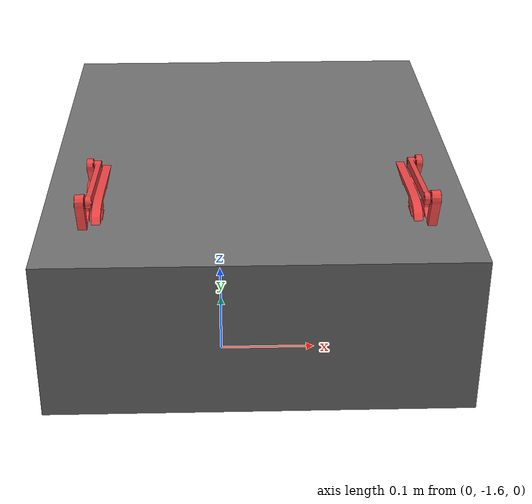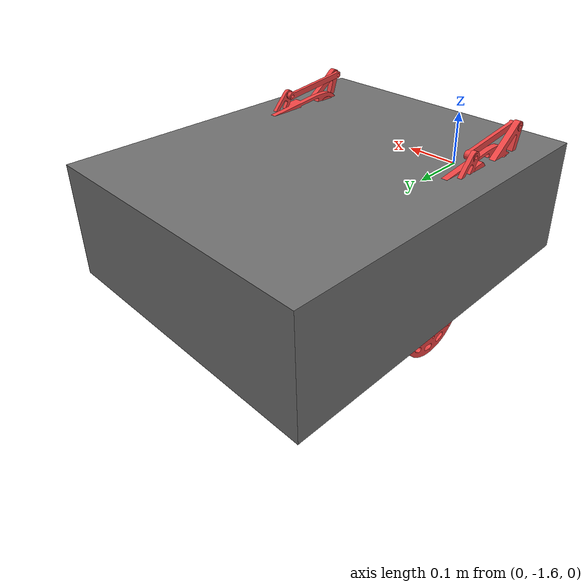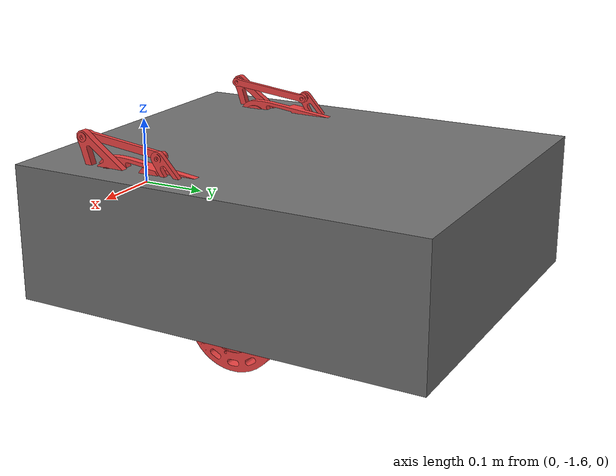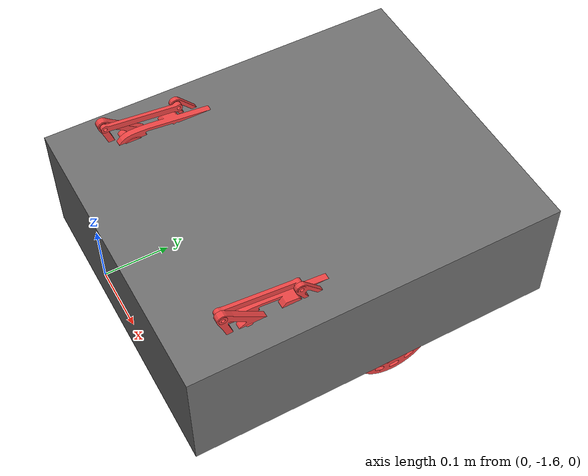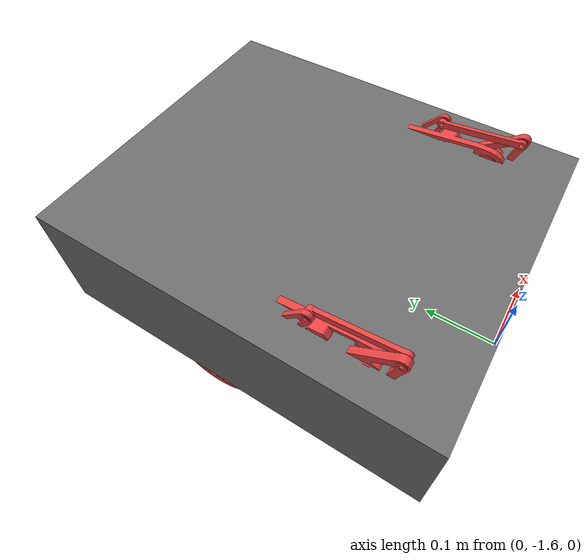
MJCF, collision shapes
<mujoco model="wheel_leg_urdf4">
  <compiler angle="radian" meshdir="meshes/" />
  <asset>
    <mesh name="base_link" file="base_link.STL" />
    <mesh name="jIO" file="jIO.STL" />
    <mesh name="jOP" file="jOP.STL" />
    <mesh name="jwheel_left" file="jwheel_left.STL" />
    <mesh name="jAG" file="jAG.STL" />
    <mesh name="jGH" file="jGH.STL" />
    <mesh name="jwheel_right" file="jwheel_right.STL" />
    <mesh name="jIJ" file="jIJ.STL" />
    <mesh name="jJM" file="jJM.STL" />
    <mesh name="jMK" file="jMK.STL" />
    <mesh name="jKN" file="jKN.STL" />
    <mesh name="jAB" file="jAB.STL" />
    <mesh name="jBE" file="jBE.STL" />
    <mesh name="jEC" file="jEC.STL" />
    <mesh name="jCF" file="jCF.STL" />
    <material name="base_link_mat" rgba="1 1 1 1" specular="0" />
    <material name="jIO_mat" rgba="1 1 1 1" specular="0" />
    <material name="jOP_mat" rgba="1 1 1 1" specular="0" />
    <material name="jwheel_left_mat" rgba="1 1 1 1" specular="0" />
    <material name="jIO_dummy_child_link1_mat" rgba="1 1 1 1" specular="0" />
    <material name="jIO_dummy_child_link2_mat" rgba="1 1 1 1" specular="0" />
    <material name="jAG_mat" rgba="1 1 1 1" specular="0" />
    <material name="jGH_mat" rgba="1 1 1 1" specular="0" />
    <material name="jwheel_right_mat" rgba="1 1 1 1" specular="0" />
    <material name="jAG_dummy_child_link1_mat" rgba="1 1 1 1" specular="0" />
    <material name="jAG_dummy_child_link2_mat" rgba="1 1 1 1" specular="0" />
    <material name="jIJ_mat" rgba="1 1 1 1" specular="0" />
    <material name="jJM_mat" rgba="1 1 1 1" specular="0" />
    <material name="jMK_mat" rgba="1 1 1 1" specular="0" />
    <material name="jKN_mat" rgba="1 1 1 1" specular="0" />
    <material name="jKN_dummy_child_link1_mat" rgba="1 1 1 1" specular="0" />
    <material name="jKN_dummy_child_link2_mat" rgba="1 1 1 1" specular="0" />
    <material name="jMK_dummy_child1_mat" rgba="1 1 1 1" specular="0" />
    <material name="jMK_dummy_child2_mat" rgba="1 1 1 1" specular="0" />
    <material name="jAB_mat" rgba="1 1 1 1" specular="0" />
    <material name="jBE_mat" rgba="1 1 1 1" specular="0" />
    <material name="jEC_mat" rgba="1 1 1 1" specular="0" />
    <material name="jCF_mat" rgba="1 1 1 1" specular="0" />
    <material name="jCF_dummy_child_link1_mat" rgba="1 1 1 1" specular="0" />
    <material name="jCF_dummy_child_link2_mat" rgba="1 1 1 1" specular="0" />
    <material name="jEC_dummy_child_link1_mat" rgba="1 1 1 1" specular="0" />
    <material name="jEC_dummy_child_link2_mat" rgba="1 1 1 1" specular="0" />
  </asset>

  <worldbody>
    <body name="base_link" pos="0 0 0">
      <inertial pos="0.0417103 -1.2738845 0.0104467" mass="2.9590077" fullinertia="0.0056482148 0.0050524279 0.0075733097 -0.0000008673 0.0000000444 0.0000040312"/>
      <geom pos="0 0 0" group="1" contype="0" conaffinity="0" material="base_link_mat" type="mesh" mesh="base_link" />
      <geom pos="0.0421294 -1.3031 0.0062453" rgba="0.4392 0.4392 0.4392 1" group="3" contype="1" conaffinity="1" type="box" size="0.244 0.2952 0.0955" />
      <body name="jIO" pos="-0.1522986 -1.2700002 0.0619694" quat="0.7071068 0 0 0.7071068">
        <joint name="jIO" type="hinge" axis="0 -1 0" damping="0" frictionloss="0"/>
        <inertial pos="-0.1054525 -0.012301 0.0159392" mass="0.077344" fullinertia="0.00003351 0.0004740894 0.0004419619 0.0000003193 0.000056068 -0.0000001312"/>
        <geom pos="0 0 0" group="1" contype="0" conaffinity="0" material="jIO_mat" type="mesh" mesh="jIO" />
        <geom pos="0 0 0" rgba="0.9373 0.2667 0.2667 1" group="3" contype="1" conaffinity="1" type="mesh" mesh="jIO" />
        <body name="jOP" pos="-0.213571 0.003372 0.0245218">
          <joint name="jOP" type="hinge" axis="0 -1 0" damping="0" frictionloss="0"/>
          <inertial pos="0.0856414 -0.0054263 -0.0568953" mass="0.1264652" fullinertia="0.0004127776 0.0011948489 0.0007845886 0 0.0005167124 0"/>
          <geom pos="0 0 0" group="1" contype="0" conaffinity="0" material="jOP_mat" type="mesh" mesh="jOP" />
          <geom pos="0 0 0" rgba="0.9373 0.2667 0.2667 1" group="3" contype="1" conaffinity="1" type="mesh" mesh="jOP" />
          <body name="jwheel_left" pos="0.2135712 0.0402 -0.1447458">
            <joint name="jwheel_left" type="hinge" axis="0 -1 0" damping="0" frictionloss="0"/>
            <inertial pos="0.0001362 -0.0216832 -0.000319" mass="0.4003533" fullinertia="0.0003491533 0.0005769566 0.0003526795 0.0000004461 -0.0000018384 -0.0000010347"/>
            <geom pos="0 0 0" group="1" contype="0" conaffinity="0" material="jwheel_left_mat" type="mesh" mesh="jwheel_left" />
            <geom pos="0 0 0" rgba="0.9373 0.2667 0.2667 1" group="3" contype="1" conaffinity="1" type="mesh" mesh="jwheel_left" />
          </body>
        </body>
        <body name="jIO_dummy_child_link1" pos="-0.0963552 -0.014128 0.0109403">
          <joint name="jIO_dummy_child_link1" type="hinge" axis="0 -1 0" damping="0" frictionloss="0"/>
          <inertial pos="0 0 0" mass="0.001" diaginertia="0.000001 0.000001 0.000001"/>
          <site name="left_rear_loop_1" pos="0 0 0" size="0.008" rgba="1 0 0 1"/>
        </body>
        <body name="jIO_dummy_child_link2" pos="-0.0963552 -0.011628 0.0109403">
          <joint name="jIO_dummy_child_link2" type="hinge" axis="0 -1 0" damping="0" frictionloss="0"/>
          <inertial pos="0 0 0" mass="0.001" diaginertia="0.000001 0.000001 0.000001"/>
          <site name="left_rear_loop_2" pos="0 0 0" size="0.008" rgba="1 0.5 0 1"/>
        </body>
      </body>
      <body name="jAG" pos="0.2365575 -1.2699998 0.0619694" quat="0.7071068 0 0 0.7071068">
        <joint name="jAG" type="hinge" axis="0 -1 0" damping="0" frictionloss="0"/>
        <inertial pos="-0.1054529 0.012301 0.0159392" mass="0.077344" fullinertia="0.00003351 0.0004740894 0.0004419619 -0.0000003193 0.000056068 0.0000001312"/>
        <geom pos="0 0 0" group="1" contype="0" conaffinity="0" material="jAG_mat" type="mesh" mesh="jAG" />
        <geom pos="0 0 0" rgba="0.9373 0.2667 0.2667 1" group="3" contype="1" conaffinity="1" type="mesh" mesh="jAG" />
        <body name="jGH" pos="-0.2135713 -0.003372 0.0245218">
          <joint name="jGH" type="hinge" axis="0 1 0" damping="0" frictionloss="0"/>
          <inertial pos="0.0857663 0.0054204 -0.0569782" mass="0.1262811" fullinertia="0.0004127578 0.0011948092 0.0007845687 0 0.0005167124 0"/>
          <geom pos="0 0 0" group="1" contype="0" conaffinity="0" material="jGH_mat" type="mesh" mesh="jGH" />
          <geom pos="0 0 0" rgba="0.9373 0.2667 0.2667 1" group="3" contype="1" conaffinity="1" type="mesh" mesh="jGH" />
          <body name="jwheel_right" pos="0.2135712 -0.0402 -0.1447458">
            <joint name="jwheel_right" type="hinge" axis="0 1 0" damping="0" frictionloss="0"/>
            <inertial pos="0.0000988 0.0216832 -0.0003325" mass="0.4003533" fullinertia="0.0003487837 0.0005769566 0.0003530492 -0.0000003172 -0.0000013926 0.0000010812"/>
            <geom pos="0 0 0" group="1" contype="0" conaffinity="0" material="jwheel_right_mat" type="mesh" mesh="jwheel_right" />
            <geom pos="0 0 0" rgba="0.9373 0.2667 0.2667 1" group="3" contype="1" conaffinity="1" type="mesh" mesh="jwheel_right" />
          </body>
        </body>
        <body name="jAG_dummy_child_link1" pos="-0.0963555 0.014128 0.0109403">
          <joint name="jAG_dummy_child_link1" type="hinge" axis="0 -1 0" damping="0" frictionloss="0"/>
          <inertial pos="0 0 0" mass="0.001" diaginertia="0.000001 0.000001 0.000001"/>
          <site name="right_rear_loop_1" pos="0 0 0" size="0.008" rgba="1 0 0 1"/>
        </body>
        <body name="jAG_dummy_child_link2" pos="-0.0963555 0.019128 0.0109403">
          <joint name="jAG_dummy_child_link2" type="hinge" axis="0 -1 0" damping="0" frictionloss="0"/>
          <inertial pos="0 0 0" mass="0.001" diaginertia="0.000001 0.000001 0.000001"/>
          <site name="right_rear_loop_2" pos="0 0 0" size="0.008" rgba="1 0.5 0 1"/>
        </body>
      </body>
      <body name="jIJ" pos="-0.1522986 -1.2700002 0.0619694" quat="0.7071068 0 0 0.7071068">
        <joint name="jIJ" type="hinge" axis="0 -1 0" damping="0" frictionloss="0"/>
        <inertial pos="0.0410163 0.0022553 0.0027308" mass="0.0193563" fullinertia="0.0000042559 0.0000283326 0.0000242761 -0.000000021 -0.0000014498 -0.0000000015"/>
        <geom pos="0 0 0" group="1" contype="0" conaffinity="0" material="jIJ_mat" type="mesh" mesh="jIJ" />
        <geom pos="0 0 0" rgba="0.9373 0.2667 0.2667 1" group="3" contype="1" conaffinity="1" type="mesh" mesh="jIJ" />
        <body name="jJM" pos="0.0967494 -0.002628 0.0067459">
          <joint name="jJM" type="hinge" axis="0 1 0" damping="0" frictionloss="0"/>
          <inertial pos="-0.05345 -0.0037068 -0.0344676" mass="0.0067699" fullinertia="0.0000023019 0.000008212 0.0000059378 0.0000000001 -0.000003611 -0.0000000002"/>
          <geom pos="0 0 0" group="1" contype="0" conaffinity="0" material="jJM_mat" type="mesh" mesh="jJM" />
          <geom pos="0 0 0" rgba="0.9373 0.2667 0.2667 1" group="3" contype="1" conaffinity="1" type="mesh" mesh="jJM" />
          <body name="jMK" pos="-0.0979082 0.0051 -0.060324">
            <joint name="jMK" type="hinge" axis="0 1 0" damping="0" frictionloss="0"/>
            <inertial pos="-0.0759553 -0.0029262 0.0578354" mass="0.0198063" fullinertia="0.000021662 0.0000517936 0.0000302838 0 0.0000240064 0"/>
            <geom pos="0 0 0" group="1" contype="0" conaffinity="0" material="jMK_mat" type="mesh" mesh="jMK" />
            <geom pos="0 0 0" rgba="0.9373 0.2667 0.2667 1" group="3" contype="1" conaffinity="1" type="mesh" mesh="jMK" />
            <body name="jKN" pos="-0.1325826 -0.01135 0.1162168">
              <joint name="jKN" type="hinge" axis="0 1 0" damping="0" frictionloss="0"/>
              <inertial pos="-0.0620655 -0.0003389 0.0071913" mass="0.0086212" fullinertia="0.0000002587 0.0000114016 0.0000111992 -0.0000000501 0.0000012849 0.0000000058"/>
              <geom pos="0 0 0" group="1" contype="0" conaffinity="0" material="jKN_mat" type="mesh" mesh="jKN" />
              <geom pos="0 0 0" rgba="0.9373 0.2667 0.2667 1" group="3" contype="1" conaffinity="1" type="mesh" mesh="jKN" />
              <body name="jKN_dummy_child_link1" pos="-0.1172158 -0.00425 0.0135814">
                <joint name="jKN_dummy_child_link1" type="hinge" axis="0 1 0" damping="0" frictionloss="0"/>
                <inertial pos="0 0 0" mass="0.001" diaginertia="0.000001 0.000001 0.000001"/>
              </body>
              <body name="jKN_dummy_child_link2" pos="-0.1172158 0.00225 0.0135814">
                <joint name="jKN_dummy_child_link2" type="hinge" axis="0 1 0" damping="0" frictionloss="0"/>
                <inertial pos="0 0 0" mass="0.001" diaginertia="0.000001 0.000001 0.000001"/>
              </body>
            </body>
            <body name="jMK_dummy_child1" pos="-0.0951965 0.0015 0.0645185">
              <joint name="jMK_dummy_child1" type="hinge" axis="0 1 0" damping="0" frictionloss="0"/>
              <inertial pos="0 0 0" mass="0.001" diaginertia="0.000001 0.000001 0.000001"/>
              <site name="left_front_loop_1" pos="0 0 0" size="0.008" rgba="0 1 0 1"/>
            </body>
            <body name="jMK_dummy_child2" pos="-0.0951965 -0.0031 0.0645185">
              <joint name="jMK_dummy_child2" type="hinge" axis="0 1 0" damping="0" frictionloss="0"/>
              <inertial pos="0 0 0" mass="0.001" diaginertia="0.000001 0.000001 0.000001"/>
              <site name="left_front_loop_2" pos="0 0 0" size="0.008" rgba="0 0.7 1 1"/>
            </body>
          </body>
        </body>
      </body>
      <body name="jAB" pos="0.2365575 -1.2699998 0.0619694" quat="0.7071068 0 0 0.7071068">
        <joint name="jAB" type="hinge" axis="0 -1 0" damping="0" frictionloss="0"/>
        <inertial pos="0.0410159 -0.0022553 0.0027308" mass="0.0193563" fullinertia="0.0000042559 0.0000283326 0.0000242761 0.000000021 -0.0000014498 0.0000000015"/>
        <geom pos="0 0 0" group="1" contype="0" conaffinity="0" material="jAB_mat" type="mesh" mesh="jAB" />
        <geom pos="0 0 0" rgba="0.9373 0.2667 0.2667 1" group="3" contype="1" conaffinity="1" type="mesh" mesh="jAB" />
        <body name="jBE" pos="0.0967491 0.002628 0.0067459">
          <joint name="jBE" type="hinge" axis="0 -1 0" damping="0" frictionloss="0"/>
          <inertial pos="-0.05345 0.0042068 -0.0344676" mass="0.0067699" fullinertia="0.0000023019 0.000008212 0.0000059378 -0.0000000001 -0.000003611 0.0000000002"/>
          <geom pos="0 0 0" group="1" contype="0" conaffinity="0" material="jBE_mat" type="mesh" mesh="jBE" />
          <geom pos="0 0 0" rgba="0.9373 0.2667 0.2667 1" group="3" contype="1" conaffinity="1" type="mesh" mesh="jBE" />
          <body name="jEC" pos="-0.0979082 -0.0046 -0.060324">
            <joint name="jEC" type="hinge" axis="0 1 0" damping="0" frictionloss="0"/>
            <inertial pos="-0.0759553 0.0024262 0.0578354" mass="0.0198063" fullinertia="0.000021662 0.0000517936 0.0000302838 0 0.0000240064 0"/>
            <geom pos="0 0 0" group="1" contype="0" conaffinity="0" material="jEC_mat" type="mesh" mesh="jEC" />
            <geom pos="0 0 0" rgba="0.9373 0.2667 0.2667 1" group="3" contype="1" conaffinity="1" type="mesh" mesh="jEC" />
            <body name="jCF" pos="-0.1325826 0.01085 0.1162168">
              <joint name="jCF" type="hinge" axis="0 -1 0" damping="0" frictionloss="0"/>
              <inertial pos="-0.0620655 0.0003389 0.0071913" mass="0.0086212" fullinertia="0.0000002587 0.0000114016 0.0000111992 0.0000000501 0.0000012849 -0.0000000058"/>
              <geom pos="0 0 0" group="1" contype="0" conaffinity="0" material="jCF_mat" type="mesh" mesh="jCF" />
              <geom pos="0 0 0" rgba="0.9373 0.2667 0.2667 1" group="3" contype="1" conaffinity="1" type="mesh" mesh="jCF" />
              <body name="jCF_dummy_child_link1" pos="-0.1172158 0.00425 0.0135814">
                <joint name="jCF_dummy_child_link1" type="hinge" axis="0 -1 0" damping="0" frictionloss="0"/>
                <inertial pos="0 0 0" mass="0.001" diaginertia="0.000001 0.000001 0.000001"/>
              </body>
              <body name="jCF_dummy_child_link2" pos="-0.1172158 -0.00225 0.0135814">
                <joint name="jCF_dummy_child_link2" type="hinge" axis="0 -1 0" damping="0" frictionloss="0"/>
                <inertial pos="0 0 0" mass="0.001" diaginertia="0.000001 0.000001 0.000001"/>
              </body>
            </body>
            <body name="jEC_dummy_child_link1" pos="-0.0951965 -0.002 0.0645185">
              <joint name="jEC_dummy_child_link1" type="hinge" axis="0 1 0" damping="0" frictionloss="0"/>
              <inertial pos="0 0 0" mass="0.001" diaginertia="0.000001 0.000001 0.000001"/>
              <site name="right_front_loop_1" pos="0 0 0" size="0.008" rgba="0 1 0 1"/>
            </body>
            <body name="jEC_dummy_child_link2" pos="-0.0951965 0.002 0.0645185">
              <joint name="jEC_dummy_child_link2" type="hinge" axis="0 1 0" damping="0" frictionloss="0"/>
              <inertial pos="0 0 0" mass="0.001" diaginertia="0.000001 0.000001 0.000001"/>
              <site name="right_front_loop_2" pos="0 0 0" size="0.008" rgba="0 0.7 1 1"/>
            </body>
          </body>
        </body>
      </body>
    </body>
  </worldbody>
  <equality>
    <connect name="left_loop_1" site1="left_rear_loop_1" site2="left_front_loop_1" solref="0.002 1" solimp="0.99 0.999 0.001"/>
    <connect name="left_loop_2" site1="left_rear_loop_2" site2="left_front_loop_2" solref="0.002 1" solimp="0.99 0.999 0.001"/>
    <connect name="right_loop_1" site1="right_rear_loop_1" site2="right_front_loop_1" solref="0.002 1" solimp="0.99 0.999 0.001"/>
    <connect name="right_loop_2" site1="right_rear_loop_2" site2="right_front_loop_2" solref="0.002 1" solimp="0.99 0.999 0.001"/>
  </equality>
  <actuator>
    <position name="jIO_servo" joint="jIO" kp="100" />
    <position name="jOP_servo" joint="jOP" kp="100" />
    <position name="jwheel_left_servo" joint="jwheel_left" kp="100" />
    <position name="jAG_servo" joint="jAG" kp="100" />
    <position name="jGH_servo" joint="jGH" kp="100" />
    <position name="jwheel_right_servo" joint="jwheel_right" kp="100" />
    <position name="jIJ_servo" joint="jIJ" kp="100" />
    <position name="jJM_servo" joint="jJM" kp="100" />
    <position name="jMK_servo" joint="jMK" kp="100" />
    <position name="jKN_servo" joint="jKN" kp="100" />
    <position name="jAB_servo" joint="jAB" kp="100" />
    <position name="jBE_servo" joint="jBE" kp="100" />
    <position name="jEC_servo" joint="jEC" kp="100" />
    <position name="jCF_servo" joint="jCF" kp="100" />
  </actuator>
</mujoco>
